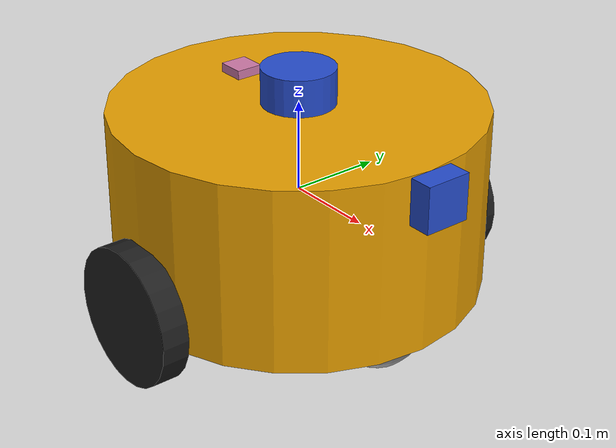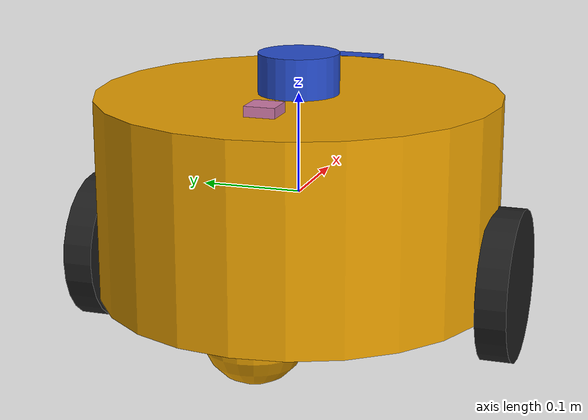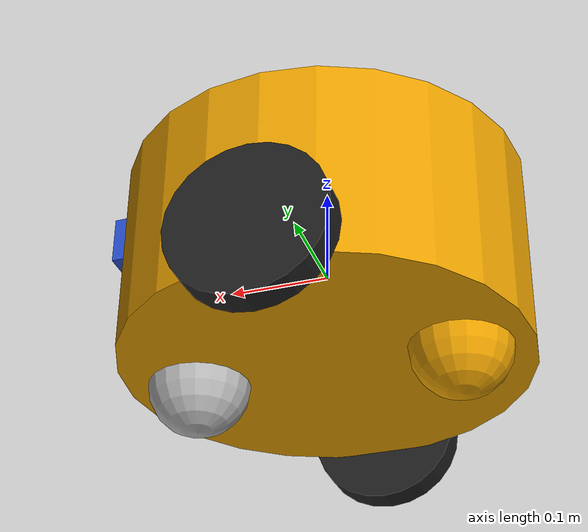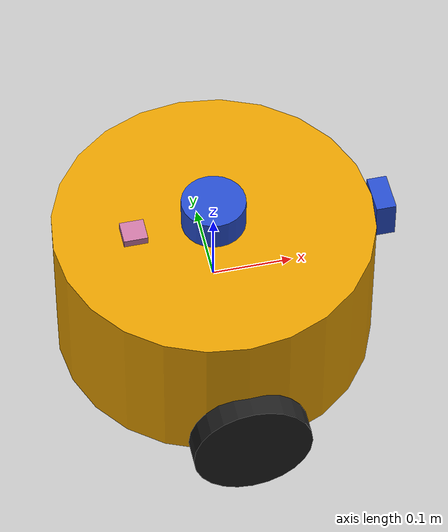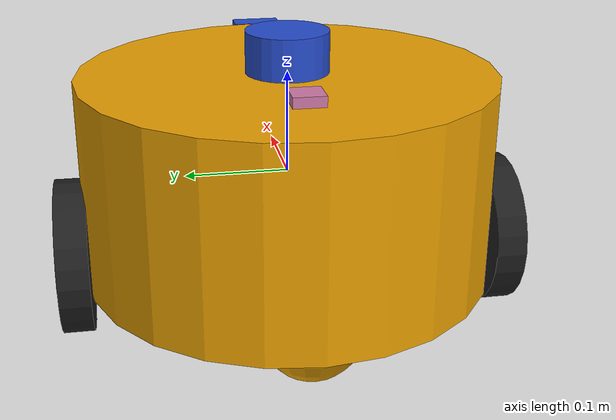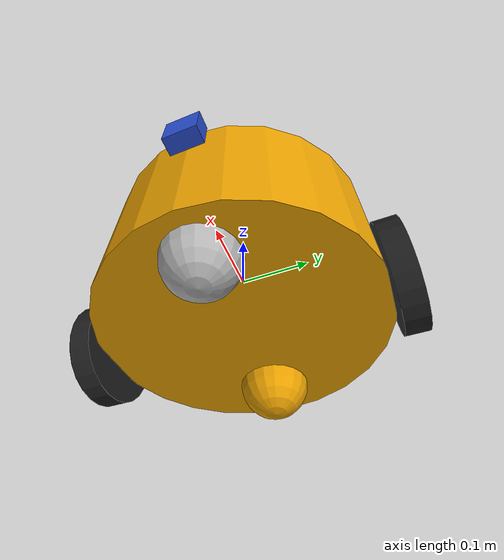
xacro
<?xml version="1.0"?>
<robot name="dribot" xmlns:xacro="http://ros.org/wiki/xacro">

  <xacro:property name="base_radius" value="0.2"/>
  <xacro:property name="base_height" value="0.20"/>
  <xacro:property name="base_mass" value="18"/>

  <xacro:property name="wheel_radius" value="0.075"/>
  <xacro:property name="wheel_width" value="0.03"/>
  <xacro:property name="wheel_mass" value="0.5"/>

  <xacro:property name="wheel_ygap" value="0.01"/>
  <xacro:property name="wheel_zoff" value="${wheel_radius}"/>

  <xacro:property name="base_to_caster" value="0.13"/>

  <xacro:include filename="$(find dribot_description)/urdf/macros.xacro" />
  <xacro:include filename="$(find dribot_description)/urdf/wheel.xacro" />
  <xacro:include filename="$(find dribot_description)/urdf/caster.xacro" />
  <xacro:include filename="$(find dribot_description)/urdf/camera.xacro" />
  <xacro:include filename="$(find dribot_description)/urdf/lidar.xacro" />
  <xacro:include filename="$(find dribot_description)/urdf/imu.xacro" />

  <link name="base_link">
    <visual>
      <origin xyz="0 0 0" rpy="0 0 0"/>
      <geometry>
        <cylinder radius="${base_radius}" length="${base_height}"/>
      </geometry>
    </visual>

    <collision>
      <origin xyz="0 0 0" rpy="0 0 0"/>
      <geometry>
        <cylinder radius="${base_radius}" length="${base_height}"/>
      </geometry>
    </collision>

    <xacro:cylinder_inertia m="${base_mass}" r="${base_radius}" h="${base_height}" roll="0"/>
  </link>

  <link name="base_footprint">
  </link>

  <joint name="base_joint" type="fixed">
    <parent link="base_link"/>
    <child link="base_footprint"/>
    <origin xyz="0.0 0.0 ${-(wheel_radius+wheel_zoff)}" rpy="0 0 0"/>
  </joint>

  <xacro:wheel prefix="wheel_left" x_pos="0" y_pos="${base_radius+wheel_ygap}" />
  <xacro:wheel prefix="wheel_right" x_pos="0" y_pos="-${base_radius+wheel_ygap}" />
  <xacro:camera_macro parent="base_link" x_pos="${base_radius+0.0125}" y_pos="0" z_pos="${base_height/2-0.025}" />
  <xacro:lidar_macro parent="base_link" x_pos="0" y_pos="0" z_pos="${base_height/2+0.02}" />
  <xacro:imu_macro parent="base_link" x_pos="-0.10" y_pos="0" z_pos="${base_height/2+0.005}" />

  <xacro:caster prefix="caster_front" x_pos="${base_to_caster}"
                radius="${(wheel_radius+wheel_zoff-(base_height/2))}"/>
  <xacro:caster prefix="caster_rear" x_pos="${-base_to_caster}"
                radius="${(wheel_radius+wheel_zoff-(base_height/2))}"/>

  <gazebo>
    <plugin name='diff_drive' filename='libgazebo_ros_diff_drive.so'>

      <!-- Make sure the names here match joints specified in our wheel.xacro
           in case of our code they are named `{prefix}_joint`, where prefix
           is declared when we call xacro:wheel. -->
      <left_joint>wheel_left_joint</left_joint>
      <right_joint>wheel_right_joint</right_joint>

      <!-- In the two lines below we are using parameters to calculate values
           that we pass into the plugin. -->
      <wheel_separation>${2*base_radius+2*wheel_ygap+2*wheel_width/2}</wheel_separation>
      <wheel_diameter>${2*wheel_radius}</wheel_diameter>

      <max_wheel_torque>20</max_wheel_torque>
      <max_wheel_acceleration>1.0</max_wheel_acceleration>

      <publish_odom>true</publish_odom>
      <publish_odom_tf>false</publish_odom_tf>
      <publish_wheel_tf>true</publish_wheel_tf>

      <odometry_frame>odom</odometry_frame>
      <robot_base_frame>base_footprint</robot_base_frame>
    </plugin>
  </gazebo>

</robot>

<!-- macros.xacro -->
<robot name="dribot_scripts" xmlns:xacro="http://ros.org/wiki/xacro">

  <!-- Define some commonly used intertial properties  -->
  <xacro:macro name="box_inertia" params="m w h d">
    <inertial>
      <origin xyz="0 0 0" rpy="${pi/2} 0 ${pi/2}"/>
      <mass value="${m}"/>
      <inertia ixx="${(m/12) * (h*h + d*d)}" ixy="0.0" ixz="0.0" iyy="${(m/12) * (w*w + d*d)}" iyz="0.0" izz="${(m/12) * (w*w + h*h)}"/>
    </inertial>
  </xacro:macro>

  <xacro:macro name="cylinder_inertia" params="m r h roll">
    <inertial>
      <origin xyz="0 0 0" rpy="${roll} 0 0" />
      <mass value="${m}"/>
      <inertia ixx="${(m/12) * (3*r*r + h*h)}" ixy = "0" ixz = "0" iyy="${(m/12) * (3*r*r + h*h)}" iyz = "0" izz="${(m/2) * (r*r)}"/>
    </inertial>
  </xacro:macro>

  <xacro:macro name="sphere_inertia" params="m r">
    <inertial>
      <mass value="${m}"/>
      <inertia ixx="${(2/5) * m * (r*r)}" ixy="0.0" ixz="0.0" iyy="${(2/5) * m * (r*r)}" iyz="0.0" izz="${(2/5) * m * (r*r)}"/>
    </inertial>
  </xacro:macro>

</robot>

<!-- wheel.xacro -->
<robot name="dribot_wheel" xmlns:xacro="http://ros.org/wiki/xacro">

  <xacro:macro name="wheel" params="prefix x_pos y_pos">
    <link name="${prefix}_link">
      <visual>
        <origin xyz="0 0 0" rpy="${pi/2} 0 0"/>
        <geometry>
            <cylinder radius="${wheel_radius}" length="${wheel_width}"/>
        </geometry>
      </visual>

      <collision>
        <origin xyz="0 0 0" rpy="${pi/2} 0 0"/>
        <geometry>
          <cylinder radius="${wheel_radius}" length="${wheel_width}"/>
        </geometry>
      </collision>

      <xacro:cylinder_inertia m="0.5" r="${wheel_radius}" h="${wheel_width}" roll="${pi/2}"/>
    </link>

    <joint name="${prefix}_joint" type="continuous">
      <parent link="base_link"/>
      <child link="${prefix}_link"/>
      <origin xyz="${x_pos} ${y_pos} ${-wheel_zoff}" rpy="0 0 0"/>
      <axis xyz="0 1 0"/>
    </joint>

    <gazebo reference="${prefix}_link">
      <mu1 value="0.50"/>
      <mu2 value="3.0"/>
      <kp  value="10000000.0" />
      <kd  value="100.0" />
      <fdir1 value="0 0 1"/>
      <material>Gazebo/Black</material>
    </gazebo>
  </xacro:macro>

</robot>

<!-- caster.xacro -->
<robot name="dribot_caster" xmlns:xacro="http://ros.org/wiki/xacro">

  <xacro:macro name="caster" params="prefix x_pos radius">
    <link name="${prefix}_link">
      <visual>
        <geometry>
          <sphere radius="${radius}"/>
        </geometry>
      </visual>

      <collision>
        <origin xyz="0 0 0" rpy="0 0 0"/>
        <geometry>
          <sphere radius="${radius}"/>
        </geometry>
      </collision>

      <xacro:sphere_inertia m="0.5" r="${radius}"/>
    </link>

    <joint name="${prefix}_joint" type="fixed">
      <parent link="base_link"/>
      <child link="${prefix}_link"/>
      <origin xyz="${x_pos} 0.0 ${-(base_height/2)}" rpy="0 0 0"/>
    </joint>
  </xacro:macro>

</robot>

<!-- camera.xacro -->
<robot name="dribot_camera" xmlns:xacro="http://ros.org/wiki/xacro">

  <xacro:macro name="camera_macro" params="parent x_pos y_pos z_pos">
    <link name="camera_link">
      <visual>
        <origin xyz="0 0 0" rpy="0 0 0"/>
        <geometry>
            <box size="0.025 0.05 0.05"/>
        </geometry>
      </visual>
    </link>

    <joint name="camera_joint" type="fixed">
      <parent link="${parent}"/>
      <child link="camera_link"/>
      <origin xyz="${x_pos} ${y_pos} ${z_pos}" rpy="0 0 0"/>
    </joint>

  <gazebo reference="camera_link">
      <sensor type="camera" name="camera">
          <always_on>true</always_on>
          <update_rate>15.0</update_rate>
          <camera name="camera">
              <horizontal_fov>1.46608</horizontal_fov>
              <image>
                  <width>640</width>
                  <height>480</height>
                  <format>R8G8B8</format>
              </image>
              <distortion>
                  <k1>0.0</k1>
                  <k2>0.0</k2>
                  <k3>0.0</k3>
                  <p1>0.0</p1>
                  <p2>0.0</p2>
                  <center>0.5 0.5</center>
              </distortion>
          </camera>
          <plugin name="camera_plugin" filename="libgazebo_ros_camera.so">
              <camera_name>camera</camera_name>
              <frame_name>camera_link</frame_name>
              <hack_baseline>0.2</hack_baseline>
          </plugin>
      </sensor>
      <material>Gazebo/Blue</material>
  </gazebo>

  </xacro:macro>

</robot>

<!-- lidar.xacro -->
<robot name="dribot_lidar" xmlns:xacro="http://ros.org/wiki/xacro">

  <xacro:macro name="lidar_macro" params="parent x_pos y_pos z_pos">
    <link name="lidar_link">
      <visual>
        <origin xyz="0 0 0" rpy="0 0 0"/>
        <geometry>
            <cylinder radius="0.04" length="0.04"/>
        </geometry>
      </visual>
    </link>

    <joint name="lidar_joint" type="fixed">
      <parent link="${parent}"/>
      <child link="lidar_link"/>
      <origin xyz="${x_pos} ${y_pos} ${z_pos}" rpy="0 0 0"/>
    </joint>

  <gazebo reference="lidar_link">
      <sensor type="ray" name="lidar">
          <always_on>true</always_on>
          <update_rate>10.0</update_rate>
          <visualize>false</visualize>
        <ray>
          <scan>
            <horizontal>
              <samples>433</samples>
              <resolution>0.9</resolution>
              <min_angle>0.000000</min_angle>
              <max_angle>6.28319</max_angle>
            </horizontal>
          </scan>
          <range>
            <min>0.2</min>
            <max>16</max>
            <resolution>0.015000</resolution>
          </range>
          <noise>
            <type>gaussian</type>
            <mean>0.0</mean>
            <stddev>0.01</stddev>
          </noise>
        </ray>
        <plugin name="scan" filename="libgazebo_ros_ray_sensor.so">
          <ros>
            <remapping>~/out:=scan</remapping>
          </ros>
          <output_type>sensor_msgs/LaserScan</output_type>
          <frame_name>lidar_link</frame_name>
        </plugin>
      </sensor>
      <material>Gazebo/Blue</material>
  </gazebo>

  </xacro:macro>

</robot>

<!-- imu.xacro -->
<robot name="dribot_imu" xmlns:xacro="http://ros.org/wiki/xacro">

  <xacro:macro name="imu_macro" params="parent x_pos y_pos z_pos">
    <link name="imu_link">
      <visual>
        <origin xyz="0 0 0" rpy="0 0 0"/>
        <geometry>
            <box size="0.03 0.03 0.01"/>
        </geometry>
      </visual>
    </link>

    <joint name="imu_joint" type="fixed">
      <parent link="${parent}"/>
      <child link="imu_link"/>
      <origin xyz="${x_pos} ${y_pos} ${z_pos}" rpy="0 0 0"/>
    </joint>

    <gazebo reference="imu_link">
        <sensor name="imu_sensor" type="imu">
            <always_on>true</always_on>
            <update_rate>100</update_rate>
            <imu>
              <angular_velocity>
                <x>
                  <noise type="gaussian">
                    <mean>0.0</mean>
                    <stddev>2e-4</stddev>
                  </noise>
                </x>
                <y>
                  <noise type="gaussian">
                    <mean>0.0</mean>
                    <stddev>2e-4</stddev>
                  </noise>
                </y>
                <z>
                  <noise type="gaussian">
                    <mean>0.0</mean>
                    <stddev>2e-4</stddev>
                  </noise>
                </z>
              </angular_velocity>
              <linear_acceleration>
                <x>
                  <noise type="gaussian">
                    <mean>0.0</mean>
                    <stddev>1.7e-2</stddev>
                  </noise>
                </x>
                <y>
                  <noise type="gaussian">
                    <mean>0.0</mean>
                    <stddev>1.7e-2</stddev>
                  </noise>
                </y>
                <z>
                  <noise type="gaussian">
                    <mean>0.0</mean>
                    <stddev>1.7e-2</stddev>
                  </noise>
                </z>
              </linear_acceleration>
            </imu>
            <plugin name="imu_sensor" filename="libgazebo_ros_imu_sensor.so">
                <ros>
                    <namespace>imu</namespace>
                    <remapping>~/out:=data</remapping>
                </ros>
                <initial_orientation_as_reference>false</initial_orientation_as_reference>
            </plugin>
        </sensor>
    </gazebo>
  </xacro:macro>

</robot>
